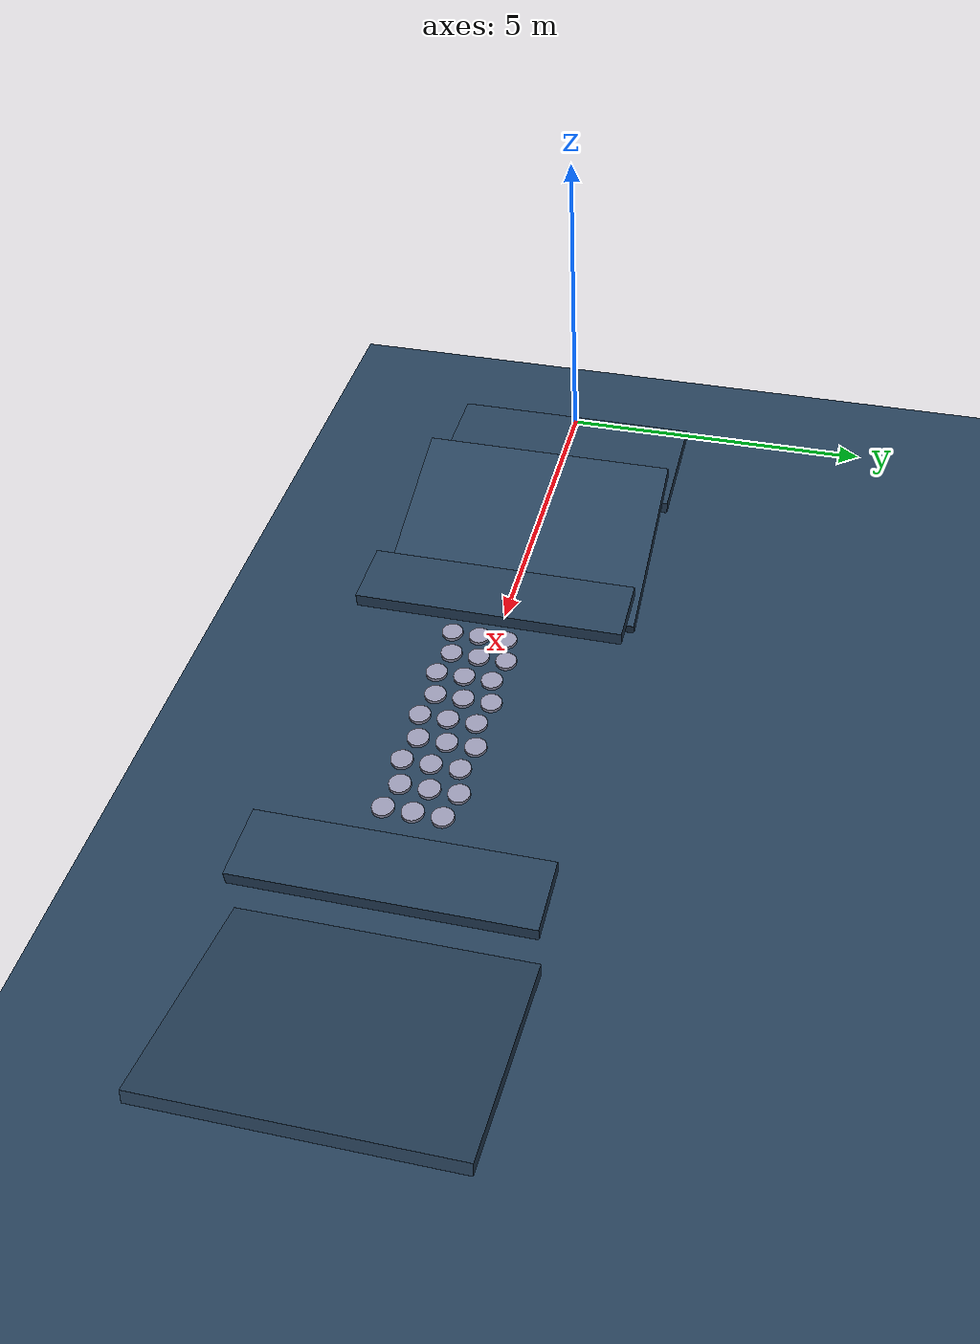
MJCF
<mujoco model="stepping_stones_terrain">
  <asset>
    <texture name="grid" type="2d" builtin="checker" width="512" height="512" rgb1=".1 .2 .3" rgb2=".2 .3 .4"/>
    <material name="grid" texture="grid" texrepeat="1 1" texuniform="true" reflectance=".2"/>
    <material name="stone" rgba=".6 .6 .7 1"/>
  </asset>

  <worldbody>
    <light pos="0 0 3" dir="0 0 -1" directional="true"/>

    <!-- Flat starting area (robot spawn point) -->
    <geom name="flat_start" type="box" pos="1.0 0 0.0" size="1.0 2.0 0.1" material="grid" friction="1.0 0.005 0.0001"/>

    <!-- Uphill slope -->
    <geom name="uphill" type="box" pos="3.4488887394336025 0 0.3882285676537811" size="1.5 2.0 0.1" euler="0 15.0 0" material="grid" friction="1.0 0.005 0.0001"/>

    <!-- First flat section -->
    <geom name="flat1" type="box" pos="5.397777478867205 0 0.8038475772933681" size="0.5 2.0 0.1" material="grid" friction="1.0 0.005 0.0001"/>

    <!-- Stepping stones section -->
    <geom name="stone_0" type="cylinder" pos="6.297777478867205 -0.4 0.8538475772933681" size="0.15 0.025" material="stone" friction="1.0 0.005 0.0001"/>
    <geom name="stone_1" type="cylinder" pos="6.297777478867205 0.0 0.8538475772933681" size="0.15 0.025" material="stone" friction="1.0 0.005 0.0001"/>
    <geom name="stone_2" type="cylinder" pos="6.297777478867205 0.4 0.8538475772933681" size="0.15 0.025" material="stone" friction="1.0 0.005 0.0001"/>
    <geom name="stone_3" type="cylinder" pos="6.697777478867206 -0.30000000000000004 0.8538475772933681" size="0.15 0.025" material="stone" friction="1.0 0.005 0.0001"/>
    <geom name="stone_4" type="cylinder" pos="6.697777478867206 0.1 0.8538475772933681" size="0.15 0.025" material="stone" friction="1.0 0.005 0.0001"/>
    <geom name="stone_5" type="cylinder" pos="6.697777478867206 0.5 0.8538475772933681" size="0.15 0.025" material="stone" friction="1.0 0.005 0.0001"/>
    <geom name="stone_6" type="cylinder" pos="7.097777478867206 -0.4 0.8538475772933681" size="0.15 0.025" material="stone" friction="1.0 0.005 0.0001"/>
    <geom name="stone_7" type="cylinder" pos="7.097777478867206 0.0 0.8538475772933681" size="0.15 0.025" material="stone" friction="1.0 0.005 0.0001"/>
    <geom name="stone_8" type="cylinder" pos="7.097777478867206 0.4 0.8538475772933681" size="0.15 0.025" material="stone" friction="1.0 0.005 0.0001"/>
    <geom name="stone_9" type="cylinder" pos="7.4977774788672065 -0.30000000000000004 0.8538475772933681" size="0.15 0.025" material="stone" friction="1.0 0.005 0.0001"/>
    <geom name="stone_10" type="cylinder" pos="7.4977774788672065 0.1 0.8538475772933681" size="0.15 0.025" material="stone" friction="1.0 0.005 0.0001"/>
    <geom name="stone_11" type="cylinder" pos="7.4977774788672065 0.5 0.8538475772933681" size="0.15 0.025" material="stone" friction="1.0 0.005 0.0001"/>
    <geom name="stone_12" type="cylinder" pos="7.897777478867207 -0.4 0.8538475772933681" size="0.15 0.025" material="stone" friction="1.0 0.005 0.0001"/>
    <geom name="stone_13" type="cylinder" pos="7.897777478867207 0.0 0.8538475772933681" size="0.15 0.025" material="stone" friction="1.0 0.005 0.0001"/>
    <geom name="stone_14" type="cylinder" pos="7.897777478867207 0.4 0.8538475772933681" size="0.15 0.025" material="stone" friction="1.0 0.005 0.0001"/>
    <geom name="stone_15" type="cylinder" pos="8.297777478867207 -0.30000000000000004 0.8538475772933681" size="0.15 0.025" material="stone" friction="1.0 0.005 0.0001"/>
    <geom name="stone_16" type="cylinder" pos="8.297777478867207 0.1 0.8538475772933681" size="0.15 0.025" material="stone" friction="1.0 0.005 0.0001"/>
    <geom name="stone_17" type="cylinder" pos="8.297777478867207 0.5 0.8538475772933681" size="0.15 0.025" material="stone" friction="1.0 0.005 0.0001"/>
    <geom name="stone_18" type="cylinder" pos="8.697777478867208 -0.4 0.8538475772933681" size="0.15 0.025" material="stone" friction="1.0 0.005 0.0001"/>
    <geom name="stone_19" type="cylinder" pos="8.697777478867208 0.0 0.8538475772933681" size="0.15 0.025" material="stone" friction="1.0 0.005 0.0001"/>
    <geom name="stone_20" type="cylinder" pos="8.697777478867208 0.4 0.8538475772933681" size="0.15 0.025" material="stone" friction="1.0 0.005 0.0001"/>
    <geom name="stone_21" type="cylinder" pos="9.097777478867208 -0.30000000000000004 0.8538475772933681" size="0.15 0.025" material="stone" friction="1.0 0.005 0.0001"/>
    <geom name="stone_22" type="cylinder" pos="9.097777478867208 0.1 0.8538475772933681" size="0.15 0.025" material="stone" friction="1.0 0.005 0.0001"/>
    <geom name="stone_23" type="cylinder" pos="9.097777478867208 0.5 0.8538475772933681" size="0.15 0.025" material="stone" friction="1.0 0.005 0.0001"/>
    <geom name="stone_24" type="cylinder" pos="9.497777478867208 -0.4 0.8538475772933681" size="0.15 0.025" material="stone" friction="1.0 0.005 0.0001"/>
    <geom name="stone_25" type="cylinder" pos="9.497777478867208 0.0 0.8538475772933681" size="0.15 0.025" material="stone" friction="1.0 0.005 0.0001"/>
    <geom name="stone_26" type="cylinder" pos="9.497777478867208 0.4 0.8538475772933681" size="0.15 0.025" material="stone" friction="1.0 0.005 0.0001"/>

    <!-- Second flat section -->
    <geom name="flat2" type="box" pos="10.397777478867205 0 0.8038475772933681" size="0.5 2.0 0.1" material="grid" friction="1.0 0.005 0.0001"/>

    <!-- Downhill slope -->
    <geom name="downhill" type="box" pos="12.346666218300808 0 0.415619009639587" size="1.5 2.0 0.1" euler="0 -15.0 0" material="grid" friction="1.0 0.005 0.0001"/>

    <!-- Safety ground plane -->
    <geom name="ground" type="plane" pos="0 0 -1.0" size="50 50 0.1" material="grid" friction="1.0 0.005 0.0001"/>

  </worldbody>
</mujoco>
